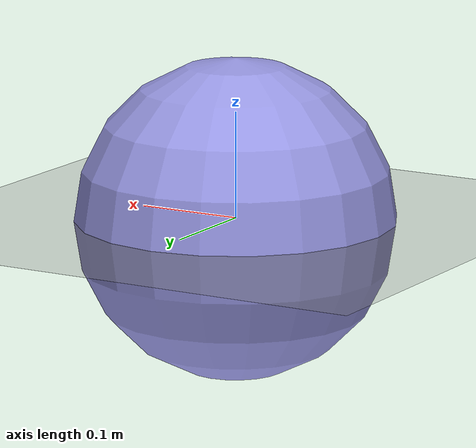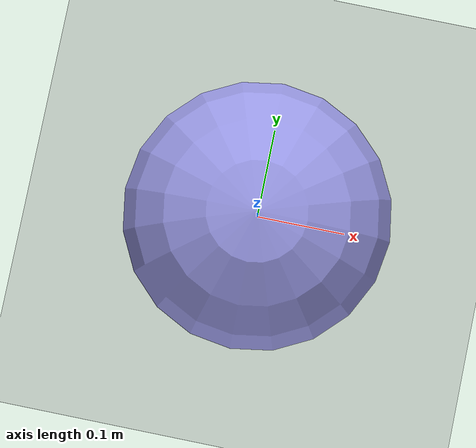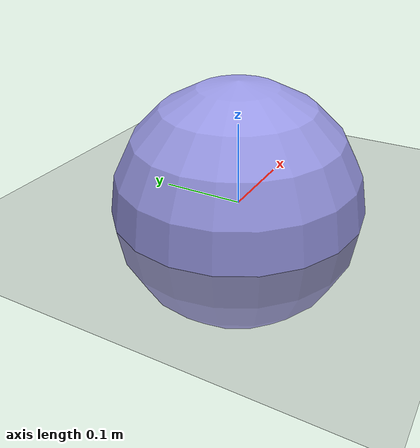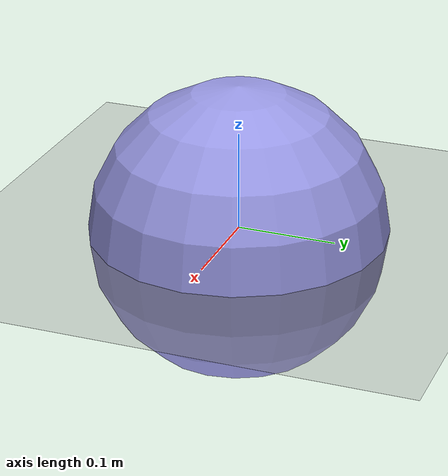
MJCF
<mujoco model="spherical_robot">
  <compiler angle="radian"/>
  <option gravity="0 0 -9.81" integrator="RK4" timestep="0.01"/>

  <default>
    <geom friction="1.0 0.1 0.01" density="1000"/>
    <joint damping="0.01"/>
  </default>

  <worldbody>
    <!-- Fixed camera -->
    <camera name="fixed_cam" pos="1 1 1" xyaxes="1 0 0 0 1 1"/>

    <!-- Ground plane -->
    <geom name="ground" type="plane" size="2 2 0.1" friction="1.0 0.1 0.01"/>

    <!-- Outer spherical shell -->
    <body name="sphere" pos="0 0 0">
      <!-- ✅ Add this line: make the sphere body free-floating -->
      <joint type="free"/>
      <inertial pos="0 0 0" mass="3.4" diaginertia="0.01 0.01 0.01"/>
      <geom type="sphere" size="0.15" rgba="0.6 0.6 0.9 1"/>

      <!-- Internal pendulum - hinge X -->
      <body name="pendulum_x" pos="0 0 0">
        <joint name="joint_x" type="hinge" axis="1 0 0"/>
        <inertial pos="0 0 0" mass="0.01" diaginertia="1e-4 1e-4 1e-4"/>

        <!-- Hinge Y nested inside X -->
        <body name="pendulum_y" pos="0 0 0">
          <joint name="joint_y" type="hinge" axis="0 1 0"/>
          <inertial pos="0 0 0.0215" mass="0.2" diaginertia="1e-4 1e-4 1e-4"/>
          <geom type="capsule" fromto="0 0 0 0 0 0.043" size="0.02" rgba="1 0.2 0.2 1"/>
        </body>
      </body>
    </body>
  </worldbody>

  <actuator>
    <motor name="motor_x" joint="joint_x" ctrlrange="-10 10"/>
    <motor name="motor_y" joint="joint_y" ctrlrange="-10 10"/>
  </actuator>
</mujoco>
